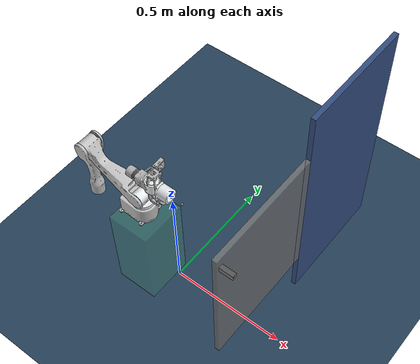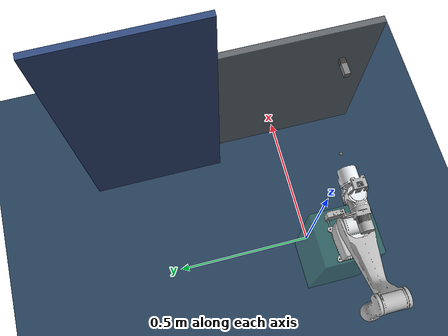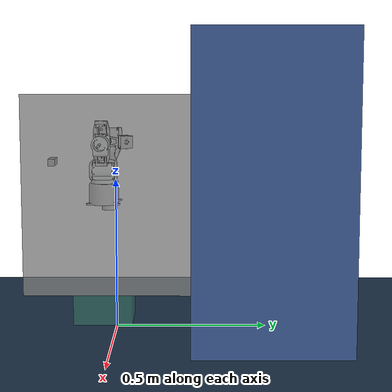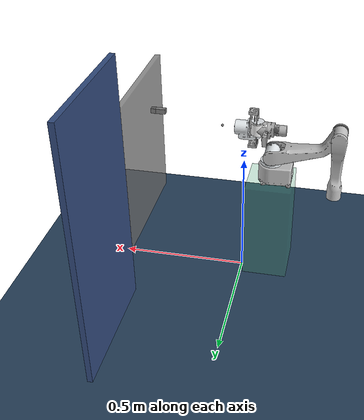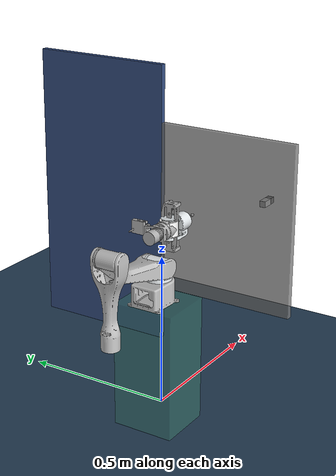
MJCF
<mujoco model="airbot_play_v3_0_otd">
    <compiler angle="radian" meshdir="meshes" autolimits="true" />
    <size njmax="500" nconmax="100" />

    <option integrator="implicitfast"/>

    <default>
        <default class="AirBot">
            <joint damping='2'/>
        </default>
        <default class="Door">
            <joint damping='0.01'/>
        </default>
        <default class="Gripper">
            <joint damping='0.5'/>
        </default>
    </default>

    <visual>
      <headlight diffuse="0.6 0.6 0.6" ambient="0.1 0.1 0.1" specular="0 0 0"/>
      <rgba haze="0.15 0.25 0.35 1"/>
      <global azimuth="120" elevation="-20"/>
    </visual>

    <asset>
        <mesh name="base_link" file="base_link.STL" />
        <mesh name="link1" file="link1.STL" />
        <mesh name="link2" file="link2.STL" />
        <mesh name="link3" file="link3.STL" />
        <mesh name="link4" file="link4.STL" />
        <mesh name="link5" file="link5.STL" />
        <mesh name="link6" file="link6.STL" />

        <texture type="skybox" builtin="gradient" rgb1="0.3 0.5 0.7" rgb2="0 0 0" width="512" height="3072"/>
        <texture type="2d" name="groundplane" builtin="checker" mark="edge" rgb1="0.2 0.3 0.4" rgb2="0.1 0.2 0.3"
        markrgb="0.8 0.8 0.8" width="300" height="300"/>
        <material name="groundplane" texture="groundplane" texuniform="true" texrepeat="5 5" reflectance="0.2"/>

    </asset>

    <worldbody>
        <!-- Light -->
        <light pos="0 0 1.5" dir="0 0 -1" directional="true"/>

        <!-- floor -->
        <geom name="floor" size="0 0 0.05" type="plane" material="groundplane"/>

        <!-- wall -->
        <body name="wall" pos="0.4 0.5 0.5">
            <geom type="box" size="0.01 0.25 0.5" rgba="0.2 0.3 0.5 0.9"/>
        </body>

        <!-- Door -->
        <body name="door" pos="0.4 0 0.5">
            <inertial pos="0 0 0" mass="0.5" diaginertia="0.001 0.001 0.001" />
            <joint name="joint_door" class="Door" type="hinge" pos="0.0 0.25 0.0" axis="0 0 1" limited="true" range="0 1.57" />
            <geom type="box" size="0.01 0.25 0.3" rgba="0.5 0.5 0.5 0.8"/>

            <body name="door_handle" pos="-0.02 -0.16 0.1">
                <geom type="box" size="0.03 0.01 0.01" rgba="0.5 0.5 0.5 1"/>
                <inertial mass="0.001" pos="0 0 0" diaginertia="0.001 0.001 0.001"/>
            </body>
        </body>

        <!-- AirBot_arm and box_link -->
        <body name="box_link" pos="-0.1 -0.05 0.2">
            <geom type="box" size="0.09 0.1 0.205" rgba="0.3 0.7 0.5 0.3"/>
            <inertial pos="0 0 0" mass="1000" diaginertia="0 0 0" />

            <body name="base_link" pos="0 0 0.2">
                <geom type="mesh" rgba="0.75294 0.75294 0.75294 1" mesh="base_link" />

                <body name="link1" pos="0 0 0.117">
                    <inertial pos="6.9854e-05 -0.0018033 -0.0040245" quat="0.714263 0.698988 0.0237953 -0.0260401" mass="0.5571" diaginertia="0.0003648 0.000344825 0.000294376" />
                    <joint name="joint1" class="AirBot" pos="0 0 0" axis="0 0 1" limited="true" range="-3.14 2.093" />
                    <geom type="mesh" rgba="0.89804 0.91765 0.92941 1" mesh="link1" />

                    <body name="link2" pos="0 0 0" quat="0.135866 0.135867 -0.69393 0.693932">
                        <inertial pos="0.22493 0.0047721 0.008023" quat="0.298115 0.596337 0.297303 0.683462" mass="0.64621" diaginertia="0.00516535 0.00505042 0.000418626" />
                        <joint name="joint2" class="AirBot" pos="0 0 0" axis="0 0 1" limited="true" range="-2.965 0.174" />
                        <geom type="mesh" rgba="0.75294 0.75294 0.75294 1" mesh="link2" />

                        <body name="link3" pos="0.27009 0 0" quat="0.55806 0 0 0.8298">
                            <inertial pos="-0.00037204 0.16316 0.0024748" quat="0.694601 0.719377 -0.00121456 0.00500828" mass="0.28804" diaginertia="0.00261618 0.00255446 0.000219265" />
                            <joint name="joint3" class="AirBot" pos="0 0 0" axis="0 0 1" limited="true" range="-0.872 3.14" />
                            <geom type="mesh" rgba="0.75294 0.75294 0.75294 1" mesh="link3" />

                            <body name="link4" pos="0 0.30854 0" quat="0.499998 -0.5 -0.5 -0.500002">
                                <inertial pos="5.2436e-06 0.00040412 -0.03228" quat="0.706226 0.0121253 0.00732967 0.707845" mass="0.34876" diaginertia="0.00505892 0.00498531 0.000346573" />
                                <joint name="joint4" class="AirBot" pos="0 0 0" axis="0 0 1" limited="true" range="-2.442 2.442" />
                                <geom type="mesh" rgba="1 1 1 1" mesh="link4" />

                                <body name="link5" pos="0 0 0" quat="0.707105 0.707108 0 0">
                                    <inertial pos="8.333e-06 0.026148 0.002525" quat="0.659447 0.751751 0 0" mass="0.36132" diaginertia="0.0004677 0.000432922 0.000178178" />
                                    <joint name="joint5" class="AirBot" pos="0 0 0" axis="0 0 1" limited="true" range="-1.74 1.74" />
                                    <geom type="mesh" rgba="0.89804 0.91765 0.92941 1" mesh="link5" />

                                    <body name="link6" pos="0 0.0865 0" quat="0.707105 -0.707108 0 0">
                                        <inertial pos="1.1897e-05 -6.2054e-07 -0.023" mass="0.17462" diaginertia="5e-05 5e-05 3.85e-05" />
                                        <joint name="joint6" class="Gripper" pos="0 0 0" axis="0 0 1" limited="true" range="-3.14 3.14" />
                                        <geom type="mesh" rgba="0.69804 0.69804 0.69804 1" mesh="link6" />
                                        <site name="attachment_site" pos="0 0 0.0" quat="1 0 0 0"/>
                                        <site name="eef_site" pos="0 0 0.05" quat="0 0.7071068 -0.7071068 0"/>

                                    </body>
                                </body>
                            </body>
                        </body>
                    </body>
                </body>
            </body>
        </body>
    </worldbody>

    <!--Contacts-->
    <contact>
        <exclude body1="door" body2="door_handle"/>
        <exclude body1="box_link" body2="base_link"/>
        <exclude body1="base_link" body2="link1"/>
    </contact>

</mujoco>
